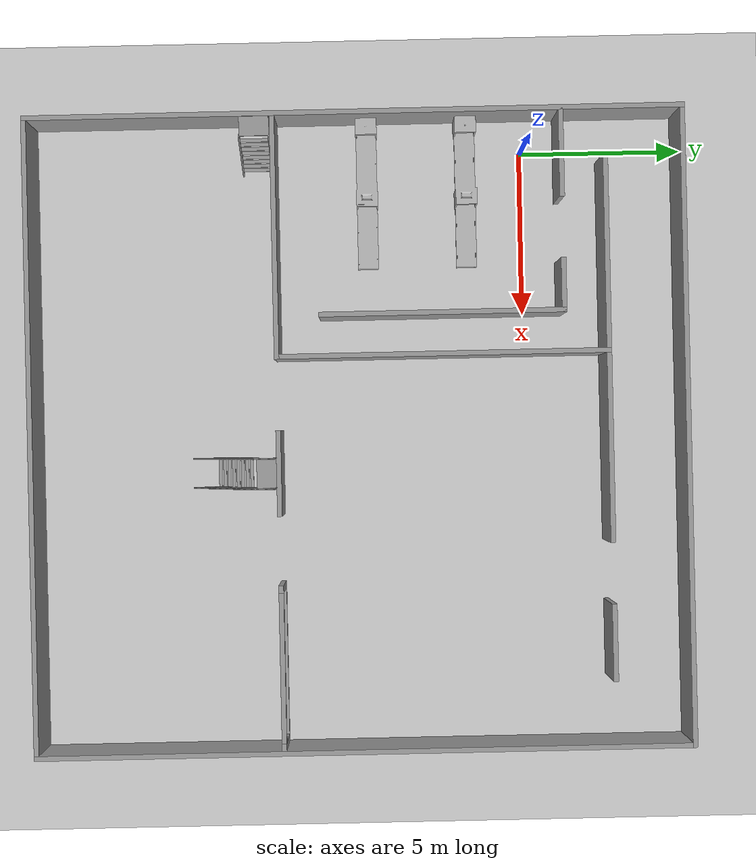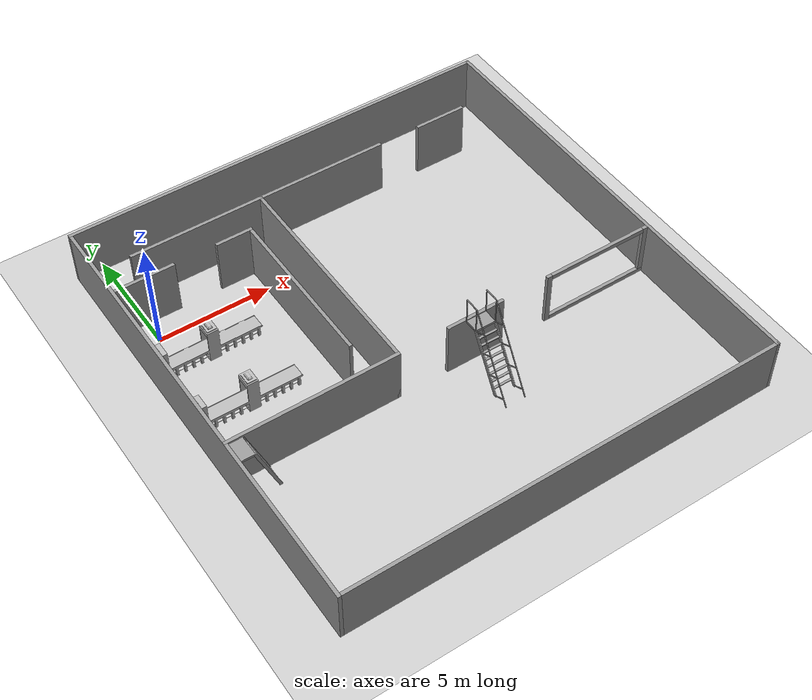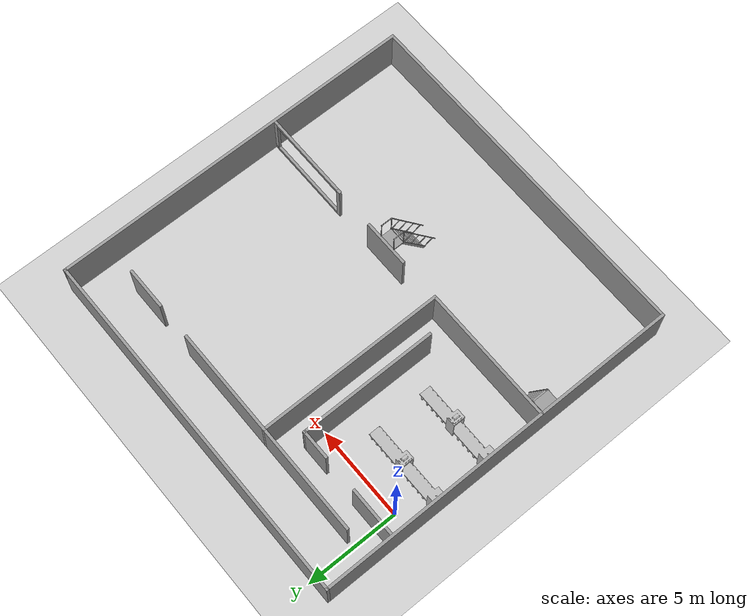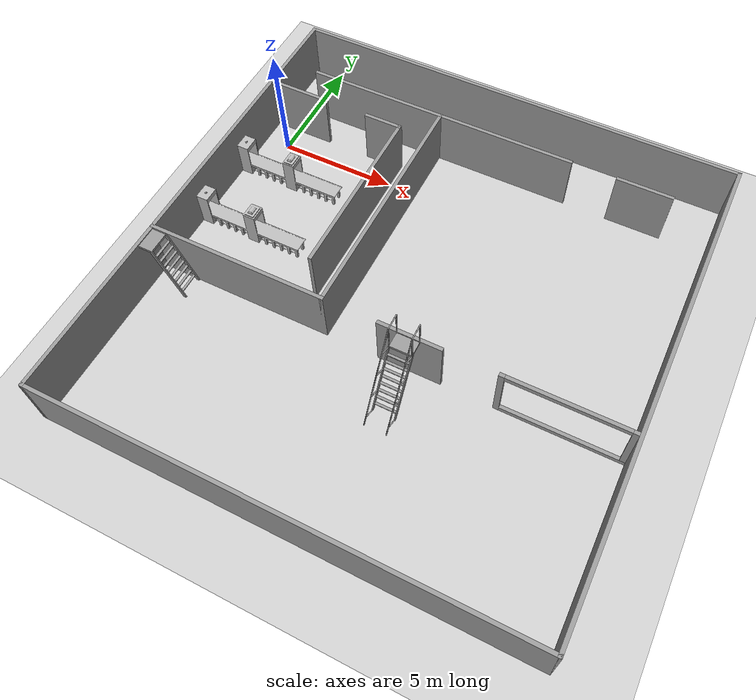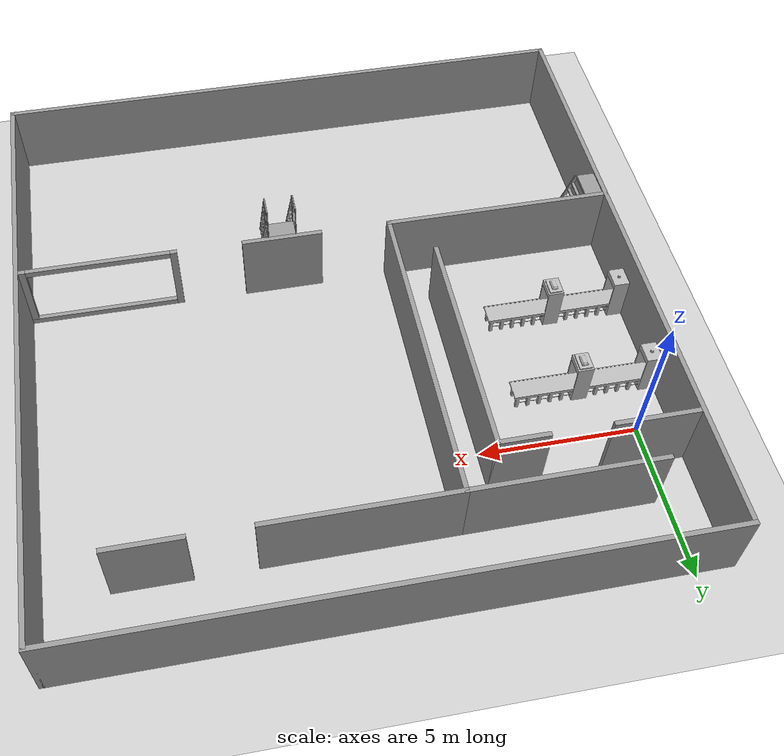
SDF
<sdf version="1.6">
 <world name="default">
  <model name="ground_plane">
   <static>1</static>
   <link name="link">
    <collision name="collision">
     <geometry><plane><normal>0 0 1</normal><size>100 100</size></plane></geometry>
     <surface><friction><ode><mu>100</mu><mu2>50</mu2></ode></friction></surface>
    </collision>
    <visual name="visual">
     <cast_shadows>0</cast_shadows>
     <geometry><plane><normal>0 0 1</normal><size>100 100</size></plane></geometry>
     <material>
      <script><uri>file://media/materials/scripts/gazebo.material</uri><name>Gazebo/Grey</name></script>
     </material>
    </visual>
   </link>
  </model>
  <model name="24fall_finalproject">
   <pose>8.55103 -5.1631 0 0 -0 0</pose>
   <link name="Wall_11">
    <collision name="Wall_11_Collision">
     <geometry><box><size>20.05 0.15 2.5</size></box></geometry>
     <pose>0 0 1.25 0 -0 0</pose>
    </collision>
    <visual name="Wall_11_Visual">
     <pose>0 0 1.25 0 -0 0</pose>
     <geometry><box><size>20.05 0.15 2.5</size></box></geometry>
     <material>
      <script><uri>file://media/materials/scripts/gazebo.material</uri><name>Gazebo/Grey</name></script>
      <ambient>1 1 1 1</ambient>
     </material>
     <meta><layer>0</layer></meta>
    </visual>
    <pose>-9.675 0 0 0 -0 -1.5708</pose>
   </link>
   <link name="Wall_22">
    <collision name="Wall_22_Collision">
     <geometry><box><size>2.727 0.15 2.5</size></box></geometry>
     <pose>0 0 1.25 0 -0 0</pose>
    </collision>
    <visual name="Wall_22_Visual">
     <pose>0 0 1.25 0 -0 0</pose>
     <geometry><box><size>2.727 0.15 2.5</size></box></geometry>
     <material>
      <script><uri>file://media/materials/scripts/gazebo.material</uri><name>Gazebo/Grey</name></script>
      <ambient>1 1 1 1</ambient>
     </material>
     <meta><layer>0</layer></meta>
    </visual>
    <pose>-8.3505 6.277 0 0 -0 0</pose>
   </link>
   <link name="Wall_24">
    <collision name="Wall_24_Collision">
     <geometry><box><size>1.65 0.15 2.5</size></box></geometry>
     <pose>0 0 1.25 0 -0 0</pose>
    </collision>
    <visual name="Wall_24_Visual">
     <pose>0 0 1.25 0 -0 0</pose>
     <geometry><box><size>1.65 0.15 2.5</size></box></geometry>
     <material>
      <script><uri>file://media/materials/scripts/gazebo.material</uri><name>Gazebo/Grey</name></script>
      <ambient>1 1 1 1</ambient>
     </material>
     <meta><layer>0</layer></meta>
    </visual>
    <pose>-4.312 6.277 0 0 -0 0</pose>
   </link>
   <link name="Wall_27">
    <collision name="Wall_27_Collision">
     <geometry><box><size>7.5 0.15 2.5</size></box></geometry>
     <pose>0 0 1.25 0 -0 0</pose>
    </collision>
    <visual name="Wall_27_Visual">
     <pose>0 0 1.25 0 -0 0</pose>
     <geometry><box><size>7.5 0.15 2.5</size></box></geometry>
     <material>
      <script><uri>file://media/materials/scripts/gazebo.material</uri><name>Gazebo/Grey</name></script>
      <ambient>1 1 1 1</ambient>
     </material>
     <meta><layer>0</layer></meta>
    </visual>
    <pose>-3.562 2.602 0 0 -0 -1.5708</pose>
   </link>
   <link name="Wall_29">
    <collision name="Wall_29_Collision">
     <geometry><box><size>7.5 0.15 2.5</size></box></geometry>
     <pose>0 0 1.25 0 -0 0</pose>
    </collision>
    <visual name="Wall_29_Visual">
     <pose>0 0 1.25 0 -0 0</pose>
     <geometry><box><size>7.5 0.15 2.5</size></box></geometry>
     <material>
      <script><uri>file://media/materials/scripts/gazebo.material</uri><name>Gazebo/Grey</name></script>
      <ambient>1 1 1 1</ambient>
     </material>
     <meta><layer>0</layer></meta>
    </visual>
    <pose>-5.989 -2.45 0 0 -0 0</pose>
   </link>
   <link name="Wall_31">
    <collision name="Wall_31_Collision">
     <geometry><box><size>10.2 0.15 2.5</size></box></geometry>
     <pose>0 0 1.25 0 -0 0</pose>
    </collision>
    <visual name="Wall_31_Visual">
     <pose>0 0 1.25 0 -0 0</pose>
     <geometry><box><size>10.2 0.15 2.5</size></box></geometry>
     <material>
      <script><uri>file://media/materials/scripts/gazebo.material</uri><name>Gazebo/Grey</name></script>
      <ambient>1 1 1 1</ambient>
     </material>
     <meta><layer>0</layer></meta>
    </visual>
    <pose>-2.314 2.575 0 0 -0 1.5708</pose>
   </link>
   <link name="Wall_33">
    <collision name="Wall_33_Collision">
     <geometry><box><size>6 0.15 2.5</size></box></geometry>
     <pose>0 0 1.25 0 -0 0</pose>
    </collision>
    <visual name="Wall_33_Visual">
     <pose>0 0 1.25 0 -0 0</pose>
     <geometry><box><size>6 0.15 2.5</size></box></geometry>
     <material>
      <script><uri>file://media/materials/scripts/gazebo.material</uri><name>Gazebo/Grey</name></script>
      <ambient>1 1 1 1</ambient>
     </material>
     <meta><layer>0</layer></meta>
    </visual>
    <pose>-5.239 7.6 0 0 -0 3.14159</pose>
   </link>
   <link name="Wall_36">
    <collision name="Wall_36_Collision">
     <geometry><box><size>19.5 0.15 2.5</size></box></geometry>
     <pose>0 0 1.25 0 -0 0</pose>
    </collision>
    <visual name="Wall_36_Visual">
     <pose>0 0 1.25 0 -0 0</pose>
     <geometry><box><size>19.5 0.15 2.5</size></box></geometry>
     <material>
      <script><uri>file://media/materials/scripts/gazebo.material</uri><name>Gazebo/Grey</name></script>
      <ambient>1 1 1 1</ambient>
     </material>
     <meta><layer>0</layer></meta>
    </visual>
    <pose>1e-06 9.95 0 0 -0 0</pose>
   </link>
   <link name="Wall_37">
    <collision name="Wall_37_Collision">
     <geometry><box><size>20.05 0.15 2.5</size></box></geometry>
     <pose>0 0 1.25 0 -0 0</pose>
    </collision>
    <visual name="Wall_37_Visual">
     <pose>0 0 1.25 0 -0 0</pose>
     <geometry><box><size>20.05 0.15 2.5</size></box></geometry>
     <material>
      <script><uri>file://media/materials/scripts/gazebo.material</uri><name>Gazebo/Grey</name></script>
      <ambient>1 1 1 1</ambient>
     </material>
     <meta><layer>0</layer></meta>
    </visual>
    <pose>9.675 0 0 0 -0 -1.5708</pose>
   </link>
   <link name="Wall_39">
    <collision name="Wall_39_Collision">
     <geometry><box><size>5.902 0.15 2.5</size></box></geometry>
     <pose>0 0 1.25 0 -0 0</pose>
    </collision>
    <visual name="Wall_39_Visual">
     <pose>0 0 1.25 0 -0 0</pose>
     <geometry><box><size>5.902 0.15 2.5</size></box></geometry>
     <material>
      <script><uri>file://media/materials/scripts/gazebo.material</uri><name>Gazebo/Grey</name></script>
      <ambient>1 1 1 1</ambient>
     </material>
     <meta><layer>0</layer></meta>
    </visual>
    <pose>0.562 7.6 0 0 -0 0</pose>
   </link>
   <link name="Wall_46">
    <collision name="Wall_46_Collision">
     <geometry><box><size>19.5 0.15 2.5</size></box></geometry>
     <pose>0 0 1.25 0 -0 0</pose>
    </collision>
    <visual name="Wall_46_Visual">
     <pose>0 0 1.25 0 -0 0</pose>
     <geometry><box><size>19.5 0.15 2.5</size></box></geometry>
     <material>
      <script><uri>file://media/materials/scripts/gazebo.material</uri><name>Gazebo/Grey</name></script>
      <ambient>1 1 1 1</ambient>
     </material>
     <meta><layer>0</layer></meta>
    </visual>
    <pose>1e-06 -9.95 0 0 -0 0</pose>
   </link>
   <link name="Wall_48">
    <collision name="Wall_48_Collision">
     <geometry><box><size>2.6 0.15 2.5</size></box></geometry>
     <pose>0 0 1.25 0 -0 0</pose>
    </collision>
    <visual name="Wall_48_Visual">
     <pose>0 0 1.25 0 -0 0</pose>
     <geometry><box><size>2.6 0.15 2.5</size></box></geometry>
     <material>
      <script><uri>file://media/materials/scripts/gazebo.material</uri><name>Gazebo/Grey</name></script>
      <ambient>1 1 1 1</ambient>
     </material>
     <meta><layer>0</layer></meta>
    </visual>
    <pose>1.213 -2.45 0 0 -0 0</pose>
   </link>
   <link name="Wall_50">
    <collision name="Wall_50_Collision">
     <geometry><box><size>2.35 0.15 2.5</size></box></geometry>
     <pose>0 0 1.25 0 -0 0</pose>
    </collision>
    <visual name="Wall_50_Visual">
     <pose>0 0 1.25 0 -0 0</pose>
     <geometry><box><size>2.35 0.15 2.5</size></box></geometry>
     <material>
      <script><uri>file://media/materials/scripts/gazebo.material</uri><name>Gazebo/Grey</name></script>
      <ambient>1 1 1 1</ambient>
     </material>
     <meta><layer>0</layer></meta>
    </visual>
    <pose>6.538 7.6 0 0 -0 0</pose>
   </link>
   <static>1</static>
  </model>
  <model name="window">
   <pose>15.6538 -7.62027 0 0 -0 0</pose>
   <link name="Wall_0">
    <visual name="Wall_0_Visual_0">
     <pose>-2.38596 0 1.25 0 -0 0</pose>
     <geometry><box><size>0.228084 0.15 2.5</size></box></geometry>
     <material>
      <script><uri>file://media/materials/scripts/gazebo.material</uri><name>Gazebo/Grey</name></script>
      <ambient>1 1 1 1</ambient>
     </material>
     <meta><layer>0</layer></meta>
    </visual>
    <collision name="Wall_0_Collision_0">
     <geometry><box><size>0.228084 0.15 2.5</size></box></geometry>
     <pose>-2.38596 0 1.25 0 -0 0</pose>
    </collision>
    <visual name="Wall_0_Visual_1">
     <pose>0.114042 0 0.1 0 -0 0</pose>
     <geometry><box><size>4.77192 0.15 0.2</size></box></geometry>
     <material>
      <script><uri>file://media/materials/scripts/gazebo.material</uri><name>Gazebo/Grey</name></script>
      <ambient>1 1 1 1</ambient>
     </material>
     <meta><layer>0</layer></meta>
    </visual>
    <collision name="Wall_0_Collision_1">
     <geometry><box><size>4.77192 0.15 0.2</size></box></geometry>
     <pose>0.114042 0 0.1 0 -0 0</pose>
    </collision>
    <visual name="Wall_0_Visual_2">
     <pose>2.38904 0 1.35 0 -0 0</pose>
     <geometry><box><size>0.221916 0.15 2.3</size></box></geometry>
     <material>
      <script><uri>file://media/materials/scripts/gazebo.material</uri><name>Gazebo/Grey</name></script>
      <ambient>1 1 1 1</ambient>
     </material>
     <meta><layer>0</layer></meta>
    </visual>
    <collision name="Wall_0_Collision_2">
     <geometry><box><size>0.221916 0.15 2.3</size></box></geometry>
     <pose>2.38904 0 1.35 0 -0 0</pose>
    </collision>
    <visual name="Wall_0_Visual_3">
     <pose>0.003084 0 2.4 0 -0 0</pose>
     <geometry><box><size>4.55 0.15 0.2</size></box></geometry>
     <material>
      <script><uri>file://media/materials/scripts/gazebo.material</uri><name>Gazebo/Grey</name></script>
      <ambient>1 1 1 1</ambient>
     </material>
     <meta><layer>0</layer></meta>
    </visual>
    <collision name="Wall_0_Collision_3">
     <geometry><box><size>4.55 0.15 0.2</size></box></geometry>
     <pose>0.003084 0 2.4 0 -0 0</pose>
    </collision>
   </link>
   <static>1</static>
  </model>
  <model name="assembly_line">
   <static>1</static>
   <link name="link">
    <collision name="collision">
     <geometry>
      <mesh><scale>0.001 0.001 0.001</scale><uri>model://assembly_line/meshes/assembly_line.STL</uri></mesh>
     </geometry>
    </collision>
    <visual name="visual">
     <geometry>
      <mesh><scale>0.001 0.001 0.001</scale><uri>model://assembly_line/meshes/assembly_line.STL</uri></mesh>
     </geometry>
    </visual>
   </link>
   <pose>-1.05222 -2.05663 -1e-06 1.5708 -0 1.5708</pose>
  </model>
  <model name="assembly_line_clone">
   <static>1</static>
   <link name="link">
    <collision name="collision">
     <geometry>
      <mesh><scale>0.001 0.001 0.001</scale><uri>model://assembly_line/meshes/assembly_line.STL</uri></mesh>
     </geometry>
    </collision>
    <visual name="visual">
     <geometry>
      <mesh><scale>0.001 0.001 0.001</scale><uri>model://assembly_line/meshes/assembly_line.STL</uri></mesh>
     </geometry>
    </visual>
   </link>
   <pose>-1.04946 -5.10141 -1e-06 1.5708 -0 1.5708</pose>
  </model>
  <model name="ladder_60deg_2rails">
   <static>1</static>
   <link name="step0">
    <pose>0 0.15396 0.266667 0 -0 0</pose>
    <inertial>
     <mass>9.75482</mass>
     <inertia>
      <ixx>0.00957124</ixx>
      <iyy>0.65963</iyy>
      <izz>0.666842</izz>
      <ixy>0</ixy>
      <ixz>0</ixz>
      <iyz>0</iyz>
     </inertia>
    </inertial>
    <collision name="collision"><geometry><box><size>0.9 0.1016 0.0381</size></box></geometry></collision>
    <visual name="visual">
     <geometry><box><size>0.9 0.1016 0.0381</size></box></geometry>
     <material>
      <script><uri>file://media/materials/scripts/gazebo.material</uri><name>Gazebo/Grey</name></script>
     </material>
    </visual>
   </link>
   <link name="step1">
    <pose>0 0.30792 0.533333 0 -0 0</pose>
    <inertial>
     <mass>9.75482</mass>
     <inertia>
      <ixx>0.00957124</ixx>
      <iyy>0.65963</iyy>
      <izz>0.666842</izz>
      <ixy>0</ixy>
      <ixz>0</ixz>
      <iyz>0</iyz>
     </inertia>
    </inertial>
    <collision name="collision"><geometry><box><size>0.9 0.1016 0.0381</size></box></geometry></collision>
    <visual name="visual">
     <geometry><box><size>0.9 0.1016 0.0381</size></box></geometry>
     <material>
      <script><uri>file://media/materials/scripts/gazebo.material</uri><name>Gazebo/Grey</name></script>
     </material>
    </visual>
   </link>
   <link name="step2">
    <pose>0 0.46188 0.8 0 -0 0</pose>
    <inertial>
     <mass>9.75482</mass>
     <inertia>
      <ixx>0.00957124</ixx>
      <iyy>0.65963</iyy>
      <izz>0.666842</izz>
      <ixy>0</ixy>
      <ixz>0</ixz>
      <iyz>0</iyz>
     </inertia>
    </inertial>
    <collision name="collision"><geometry><box><size>0.9 0.1016 0.0381</size></box></geometry></collision>
    <visual name="visual">
     <geometry><box><size>0.9 0.1016 0.0381</size></box></geometry>
     <material>
      <script><uri>file://media/materials/scripts/gazebo.material</uri><name>Gazebo/Grey</name></script>
     </material>
    </visual>
   </link>
   <link name="step3">
    <pose>0 0.61584 1.06667 0 -0 0</pose>
    <inertial>
     <mass>9.75482</mass>
     <inertia>
      <ixx>0.00957124</ixx>
      <iyy>0.65963</iyy>
      <izz>0.666842</izz>
      <ixy>0</ixy>
      <ixz>0</ixz>
      <iyz>0</iyz>
     </inertia>
    </inertial>
    <collision name="collision"><geometry><box><size>0.9 0.1016 0.0381</size></box></geometry></collision>
    <visual name="visual">
     <geometry><box><size>0.9 0.1016 0.0381</size></box></geometry>
     <material>
      <script><uri>file://media/materials/scripts/gazebo.material</uri><name>Gazebo/Grey</name></script>
     </material>
    </visual>
   </link>
   <link name="step4">
    <pose>0 0.7698 1.33333 0 -0 0</pose>
    <inertial>
     <mass>9.75482</mass>
     <inertia>
      <ixx>0.00957124</ixx>
      <iyy>0.65963</iyy>
      <izz>0.666842</izz>
      <ixy>0</ixy>
      <ixz>0</ixz>
      <iyz>0</iyz>
     </inertia>
    </inertial>
    <collision name="collision"><geometry><box><size>0.9 0.1016 0.0381</size></box></geometry></collision>
    <visual name="visual">
     <geometry><box><size>0.9 0.1016 0.0381</size></box></geometry>
     <material>
      <script><uri>file://media/materials/scripts/gazebo.material</uri><name>Gazebo/Grey</name></script>
     </material>
    </visual>
   </link>
   <link name="step5">
    <pose>0 0.92376 1.6 0 -0 0</pose>
    <inertial>
     <mass>9.75482</mass>
     <inertia>
      <ixx>0.00957124</ixx>
      <iyy>0.65963</iyy>
      <izz>0.666842</izz>
      <ixy>0</ixy>
      <ixz>0</ixz>
      <iyz>0</iyz>
     </inertia>
    </inertial>
    <collision name="collision"><geometry><box><size>0.9 0.1016 0.0381</size></box></geometry></collision>
    <visual name="visual">
     <geometry><box><size>0.9 0.1016 0.0381</size></box></geometry>
     <material>
      <script><uri>file://media/materials/scripts/gazebo.material</uri><name>Gazebo/Grey</name></script>
     </material>
    </visual>
   </link>
   <link name="step6">
    <pose>0 1.07772 1.86667 0 -0 0</pose>
    <inertial>
     <mass>9.75482</mass>
     <inertia>
      <ixx>0.00957124</ixx>
      <iyy>0.65963</iyy>
      <izz>0.666842</izz>
      <ixy>0</ixy>
      <ixz>0</ixz>
      <iyz>0</iyz>
     </inertia>
    </inertial>
    <collision name="collision"><geometry><box><size>0.9 0.1016 0.0381</size></box></geometry></collision>
    <visual name="visual">
     <geometry><box><size>0.9 0.1016 0.0381</size></box></geometry>
     <material>
      <script><uri>file://media/materials/scripts/gazebo.material</uri><name>Gazebo/Grey</name></script>
     </material>
    </visual>
   </link>
   <link name="step7">
    <pose>0 1.23168 2.13333 0 -0 0</pose>
    <inertial>
     <mass>9.75482</mass>
     <inertia>
      <ixx>0.00957124</ixx>
      <iyy>0.65963</iyy>
      <izz>0.666842</izz>
      <ixy>0</ixy>
      <ixz>0</ixz>
      <iyz>0</iyz>
     </inertia>
    </inertial>
    <collision name="collision"><geometry><box><size>0.9 0.1016 0.0381</size></box></geometry></collision>
    <visual name="visual">
     <geometry><box><size>0.9 0.1016 0.0381</size></box></geometry>
     <material>
      <script><uri>file://media/materials/scripts/gazebo.material</uri><name>Gazebo/Grey</name></script>
     </material>
    </visual>
   </link>
   <link name="landing">
    <pose>0 1.68564 2.4 0 -0 0</pose>
    <inertial>
     <mass>57.6072</mass>
     <inertia><ixx>1.73518</ixx><iyy>3.89545</iyy><izz>5.6167</izz><ixy>0</ixy><ixz>0</ixz><iyz>0</iyz></inertia>
    </inertial>
    <collision name="collision"><geometry><box><size>0.9 0.6 0.1016</size></box></geometry></collision>
    <visual name="visual">
     <geometry><box><size>0.9 0.6 0.1016</size></box></geometry>
     <material>
      <script><uri>file://media/materials/scripts/gazebo.material</uri><name>Gazebo/Grey</name></script>
     </material>
    </visual>
   </link>
   <link name="left_side_wall">
    <pose>-0.45 0.69282 1.2 1.0472 -0 0</pose>
    <collision name="collision"><geometry><box><size>0.0508 2.85128 0.13</size></box></geometry></collision>
    <visual name="visual">
     <geometry><box><size>0.0508 2.85128 0.13</size></box></geometry>
     <material>
      <script><uri>file://media/materials/scripts/gazebo.material</uri><name>Gazebo/Grey</name></script>
     </material>
    </visual>
   </link>
   <link name="right_side_wall">
    <pose>0.45 0.69282 1.2 1.0472 -0 0</pose>
    <collision name="collision"><geometry><box><size>0.0508 2.85128 0.13</size></box></geometry></collision>
    <visual name="visual">
     <geometry><box><size>0.0508 2.85128 0.13</size></box></geometry>
     <material>
      <script><uri>file://media/materials/scripts/gazebo.material</uri><name>Gazebo/Grey</name></script>
     </material>
    </visual>
   </link>
   <link name="left_railing_long">
    <pose>-0.45 0.34282 1.80622 -0.523599 0 0</pose>
    <collision name="collision">
     <geometry><cylinder><radius>0.02413</radius><length>4.17128</length></cylinder></geometry>
    </collision>
    <visual name="visual">
     <geometry><cylinder><radius>0.02413</radius><length>4.17128</length></cylinder></geometry>
     <material>
      <script><uri>file://media/materials/scripts/gazebo.material</uri><name>Gazebo/Grey</name></script>
     </material>
    </visual>
   </link>
   <link name="left_railing_upright0">
    <pose>-0.45 -0.274963 0.15875 1.0472 -0 0</pose>
    <collision name="collision">
     <geometry><cylinder><radius>0.02413</radius><length>0.541218</length></cylinder></geometry>
    </collision>
    <visual name="visual">
     <geometry><cylinder><radius>0.02413</radius><length>0.541218</length></cylinder></geometry>
     <material>
      <script><uri>file://media/materials/scripts/gazebo.material</uri><name>Gazebo/Grey</name></script>
     </material>
    </visual>
   </link>
   <link name="left_railing_upright1">
    <pose>-0.45 0.186917 0.95875 1.0472 -0 0</pose>
    <collision name="collision">
     <geometry><cylinder><radius>0.02413</radius><length>0.541218</length></cylinder></geometry>
    </collision>
    <visual name="visual">
     <geometry><cylinder><radius>0.02413</radius><length>0.541218</length></cylinder></geometry>
     <material>
      <script><uri>file://media/materials/scripts/gazebo.material</uri><name>Gazebo/Grey</name></script>
     </material>
    </visual>
   </link>
   <link name="left_railing_upright2">
    <pose>-0.45 0.648797 1.75875 1.0472 -0 0</pose>
    <collision name="collision">
     <geometry><cylinder><radius>0.02413</radius><length>0.541218</length></cylinder></geometry>
    </collision>
    <visual name="visual">
     <geometry><cylinder><radius>0.02413</radius><length>0.541218</length></cylinder></geometry>
     <material>
      <script><uri>file://media/materials/scripts/gazebo.material</uri><name>Gazebo/Grey</name></script>
     </material>
    </visual>
   </link>
   <link name="left_railing_upright3">
    <pose>-0.45 1.11068 2.55875 1.0472 -0 0</pose>
    <collision name="collision">
     <geometry><cylinder><radius>0.02413</radius><length>0.541218</length></cylinder></geometry>
    </collision>
    <visual name="visual">
     <geometry><cylinder><radius>0.02413</radius><length>0.541218</length></cylinder></geometry>
     <material>
      <script><uri>file://media/materials/scripts/gazebo.material</uri><name>Gazebo/Grey</name></script>
     </material>
    </visual>
   </link>
   <link name="left_railing_landing_top">
    <pose>-0.45 1.68564 3.61244 1.5708 -0 0</pose>
    <collision name="collision">
     <geometry><cylinder><radius>0.02413</radius><length>0.64826</length></cylinder></geometry>
    </collision>
    <visual name="visual">
     <geometry><cylinder><radius>0.02413</radius><length>0.64826</length></cylinder></geometry>
     <material>
      <script><uri>file://media/materials/scripts/gazebo.material</uri><name>Gazebo/Grey</name></script>
     </material>
    </visual>
   </link>
   <link name="left_railing_landing_upright_0">
    <pose>-0.45 1.38564 3.00622 0 -0 0</pose>
    <collision name="collision">
     <geometry><cylinder><radius>0.02413</radius><length>1.21244</length></cylinder></geometry>
    </collision>
    <visual name="visual">
     <geometry><cylinder><radius>0.02413</radius><length>1.21244</length></cylinder></geometry>
     <material>
      <script><uri>file://media/materials/scripts/gazebo.material</uri><name>Gazebo/Grey</name></script>
     </material>
    </visual>
   </link>
   <link name="left_railing_landing_upright_1">
    <pose>-0.45 1.98564 3.00622 0 -0 0</pose>
    <collision name="collision">
     <geometry><cylinder><radius>0.02413</radius><length>1.21244</length></cylinder></geometry>
    </collision>
    <visual name="visual">
     <geometry><cylinder><radius>0.02413</radius><length>1.21244</length></cylinder></geometry>
     <material>
      <script><uri>file://media/materials/scripts/gazebo.material</uri><name>Gazebo/Grey</name></script>
     </material>
    </visual>
   </link>
   <link name="right_railing_long">
    <pose>0.45 0.34282 1.80622 -0.523599 0 0</pose>
    <collision name="collision">
     <geometry><cylinder><radius>0.02413</radius><length>4.17128</length></cylinder></geometry>
    </collision>
    <visual name="visual">
     <geometry><cylinder><radius>0.02413</radius><length>4.17128</length></cylinder></geometry>
     <material>
      <script><uri>file://media/materials/scripts/gazebo.material</uri><name>Gazebo/Grey</name></script>
     </material>
    </visual>
   </link>
   <link name="right_railing_upright0">
    <pose>0.45 -0.274963 0.15875 1.0472 -0 0</pose>
    <collision name="collision">
     <geometry><cylinder><radius>0.02413</radius><length>0.541218</length></cylinder></geometry>
    </collision>
    <visual name="visual">
     <geometry><cylinder><radius>0.02413</radius><length>0.541218</length></cylinder></geometry>
     <material>
      <script><uri>file://media/materials/scripts/gazebo.material</uri><name>Gazebo/Grey</name></script>
     </material>
    </visual>
   </link>
   <link name="right_railing_upright1">
    <pose>0.45 0.186917 0.95875 1.0472 -0 0</pose>
    <collision name="collision">
     <geometry><cylinder><radius>0.02413</radius><length>0.541218</length></cylinder></geometry>
    </collision>
    <visual name="visual">
     <geometry><cylinder><radius>0.02413</radius><length>0.541218</length></cylinder></geometry>
     <material>
      <script><uri>file://media/materials/scripts/gazebo.material</uri><name>Gazebo/Grey</name></script>
     </material>
    </visual>
   </link>
   <link name="right_railing_upright2">
    <pose>0.45 0.648797 1.75875 1.0472 -0 0</pose>
    <collision name="collision">
     <geometry><cylinder><radius>0.02413</radius><length>0.541218</length></cylinder></geometry>
    </collision>
    <visual name="visual">
     <geometry><cylinder><radius>0.02413</radius><length>0.541218</length></cylinder></geometry>
     <material>
      <script><uri>file://media/materials/scripts/gazebo.material</uri><name>Gazebo/Grey</name></script>
     </material>
    </visual>
   </link>
   <link name="right_railing_upright3">
    <pose>0.45 1.11068 2.55875 1.0472 -0 0</pose>
    <collision name="collision">
     <geometry><cylinder><radius>0.02413</radius><length>0.541218</length></cylinder></geometry>
    </collision>
    <visual name="visual">
     <geometry><cylinder><radius>0.02413</radius><length>0.541218</length></cylinder></geometry>
     <material>
      <script><uri>file://media/materials/scripts/gazebo.material</uri><name>Gazebo/Grey</name></script>
     </material>
    </visual>
   </link>
   <link name="right_railing_landing_top">
    <pose>0.45 1.68564 3.61244 1.5708 -0 0</pose>
    <collision name="collision">
     <geometry><cylinder><radius>0.02413</radius><length>0.64826</length></cylinder></geometry>
    </collision>
    <visual name="visual">
     <geometry><cylinder><radius>0.02413</radius><length>0.64826</length></cylinder></geometry>
     <material>
      <script><uri>file://media/materials/scripts/gazebo.material</uri><name>Gazebo/Grey</name></script>
     </material>
    </visual>
   </link>
   <link name="right_railing_landing_upright_0">
    <pose>0.45 1.38564 3.00622 0 -0 0</pose>
    <collision name="collision">
     <geometry><cylinder><radius>0.02413</radius><length>1.21244</length></cylinder></geometry>
    </collision>
    <visual name="visual">
     <geometry><cylinder><radius>0.02413</radius><length>1.21244</length></cylinder></geometry>
     <material>
      <script><uri>file://media/materials/scripts/gazebo.material</uri><name>Gazebo/Grey</name></script>
     </material>
    </visual>
   </link>
   <link name="right_railing_landing_upright_1">
    <pose>0.45 1.98564 3.00622 0 -0 0</pose>
    <collision name="collision">
     <geometry><cylinder><radius>0.02413</radius><length>1.21244</length></cylinder></geometry>
    </collision>
    <visual name="visual">
     <geometry><cylinder><radius>0.02413</radius><length>1.21244</length></cylinder></geometry>
     <material>
      <script><uri>file://media/materials/scripts/gazebo.material</uri><name>Gazebo/Grey</name></script>
     </material>
    </visual>
   </link>
   <pose>9.74731 -9.67253 0 0 -0 0</pose>
  </model>
  <model name="ladder_70deg_0rails">
   <static>1</static>
   <link name="step0">
    <pose>0 0.097059 0.266667 0 -0 0</pose>
    <inertial>
     <mass>9.75482</mass>
     <inertia>
      <ixx>0.00957124</ixx>
      <iyy>0.65963</iyy>
      <izz>0.666842</izz>
      <ixy>0</ixy>
      <ixz>0</ixz>
      <iyz>0</iyz>
     </inertia>
    </inertial>
    <collision name="collision"><geometry><box><size>0.9 0.1016 0.0381</size></box></geometry></collision>
    <visual name="visual">
     <geometry><box><size>0.9 0.1016 0.0381</size></box></geometry>
     <material>
      <script><uri>file://media/materials/scripts/gazebo.material</uri><name>Gazebo/Grey</name></script>
     </material>
    </visual>
   </link>
   <link name="step1">
    <pose>0 0.194117 0.533333 0 -0 0</pose>
    <inertial>
     <mass>9.75482</mass>
     <inertia>
      <ixx>0.00957124</ixx>
      <iyy>0.65963</iyy>
      <izz>0.666842</izz>
      <ixy>0</ixy>
      <ixz>0</ixz>
      <iyz>0</iyz>
     </inertia>
    </inertial>
    <collision name="collision"><geometry><box><size>0.9 0.1016 0.0381</size></box></geometry></collision>
    <visual name="visual">
     <geometry><box><size>0.9 0.1016 0.0381</size></box></geometry>
     <material>
      <script><uri>file://media/materials/scripts/gazebo.material</uri><name>Gazebo/Grey</name></script>
     </material>
    </visual>
   </link>
   <link name="step2">
    <pose>0 0.291176 0.8 0 -0 0</pose>
    <inertial>
     <mass>9.75482</mass>
     <inertia>
      <ixx>0.00957124</ixx>
      <iyy>0.65963</iyy>
      <izz>0.666842</izz>
      <ixy>0</ixy>
      <ixz>0</ixz>
      <iyz>0</iyz>
     </inertia>
    </inertial>
    <collision name="collision"><geometry><box><size>0.9 0.1016 0.0381</size></box></geometry></collision>
    <visual name="visual">
     <geometry><box><size>0.9 0.1016 0.0381</size></box></geometry>
     <material>
      <script><uri>file://media/materials/scripts/gazebo.material</uri><name>Gazebo/Grey</name></script>
     </material>
    </visual>
   </link>
   <link name="step3">
    <pose>0 0.388235 1.06667 0 -0 0</pose>
    <inertial>
     <mass>9.75482</mass>
     <inertia>
      <ixx>0.00957124</ixx>
      <iyy>0.65963</iyy>
      <izz>0.666842</izz>
      <ixy>0</ixy>
      <ixz>0</ixz>
      <iyz>0</iyz>
     </inertia>
    </inertial>
    <collision name="collision"><geometry><box><size>0.9 0.1016 0.0381</size></box></geometry></collision>
    <visual name="visual">
     <geometry><box><size>0.9 0.1016 0.0381</size></box></geometry>
     <material>
      <script><uri>file://media/materials/scripts/gazebo.material</uri><name>Gazebo/Grey</name></script>
     </material>
    </visual>
   </link>
   <link name="step4">
    <pose>0 0.485294 1.33333 0 -0 0</pose>
    <inertial>
     <mass>9.75482</mass>
     <inertia>
      <ixx>0.00957124</ixx>
      <iyy>0.65963</iyy>
      <izz>0.666842</izz>
      <ixy>0</ixy>
      <ixz>0</ixz>
      <iyz>0</iyz>
     </inertia>
    </inertial>
    <collision name="collision"><geometry><box><size>0.9 0.1016 0.0381</size></box></geometry></collision>
    <visual name="visual">
     <geometry><box><size>0.9 0.1016 0.0381</size></box></geometry>
     <material>
      <script><uri>file://media/materials/scripts/gazebo.material</uri><name>Gazebo/Grey</name></script>
     </material>
    </visual>
   </link>
   <link name="step5">
    <pose>0 0.582352 1.6 0 -0 0</pose>
    <inertial>
     <mass>9.75482</mass>
     <inertia>
      <ixx>0.00957124</ixx>
      <iyy>0.65963</iyy>
      <izz>0.666842</izz>
      <ixy>0</ixy>
      <ixz>0</ixz>
      <iyz>0</iyz>
     </inertia>
    </inertial>
    <collision name="collision"><geometry><box><size>0.9 0.1016 0.0381</size></box></geometry></collision>
    <visual name="visual">
     <geometry><box><size>0.9 0.1016 0.0381</size></box></geometry>
     <material>
      <script><uri>file://media/materials/scripts/gazebo.material</uri><name>Gazebo/Grey</name></script>
     </material>
    </visual>
   </link>
   <link name="step6">
    <pose>0 0.679411 1.86667 0 -0 0</pose>
    <inertial>
     <mass>9.75482</mass>
     <inertia>
      <ixx>0.00957124</ixx>
      <iyy>0.65963</iyy>
      <izz>0.666842</izz>
      <ixy>0</ixy>
      <ixz>0</ixz>
      <iyz>0</iyz>
     </inertia>
    </inertial>
    <collision name="collision"><geometry><box><size>0.9 0.1016 0.0381</size></box></geometry></collision>
    <visual name="visual">
     <geometry><box><size>0.9 0.1016 0.0381</size></box></geometry>
     <material>
      <script><uri>file://media/materials/scripts/gazebo.material</uri><name>Gazebo/Grey</name></script>
     </material>
    </visual>
   </link>
   <link name="step7">
    <pose>0 0.77647 2.13333 0 -0 0</pose>
    <inertial>
     <mass>9.75482</mass>
     <inertia>
      <ixx>0.00957124</ixx>
      <iyy>0.65963</iyy>
      <izz>0.666842</izz>
      <ixy>0</ixy>
      <ixz>0</ixz>
      <iyz>0</iyz>
     </inertia>
    </inertial>
    <collision name="collision"><geometry><box><size>0.9 0.1016 0.0381</size></box></geometry></collision>
    <visual name="visual">
     <geometry><box><size>0.9 0.1016 0.0381</size></box></geometry>
     <material>
      <script><uri>file://media/materials/scripts/gazebo.material</uri><name>Gazebo/Grey</name></script>
     </material>
    </visual>
   </link>
   <link name="landing">
    <pose>0 1.17353 2.4 0 -0 0</pose>
    <inertial>
     <mass>57.6072</mass>
     <inertia><ixx>1.73518</ixx><iyy>3.89545</iyy><izz>5.6167</izz><ixy>0</ixy><ixz>0</ixz><iyz>0</iyz></inertia>
    </inertial>
    <collision name="collision"><geometry><box><size>0.9 0.6 0.1016</size></box></geometry></collision>
    <visual name="visual">
     <geometry><box><size>0.9 0.6 0.1016</size></box></geometry>
     <material>
      <script><uri>file://media/materials/scripts/gazebo.material</uri><name>Gazebo/Grey</name></script>
     </material>
    </visual>
   </link>
   <link name="left_side_wall">
    <pose>-0.45 0.436764 1.2 1.22173 -0 0</pose>
    <collision name="collision"><geometry><box><size>0.0508 2.63403 0.13</size></box></geometry></collision>
    <visual name="visual">
     <geometry><box><size>0.0508 2.63403 0.13</size></box></geometry>
     <material>
      <script><uri>file://media/materials/scripts/gazebo.material</uri><name>Gazebo/Grey</name></script>
     </material>
    </visual>
   </link>
   <link name="right_side_wall">
    <pose>0.45 0.436764 1.2 1.22173 -0 0</pose>
    <collision name="collision"><geometry><box><size>0.0508 2.63403 0.13</size></box></geometry></collision>
    <visual name="visual">
     <geometry><box><size>0.0508 2.63403 0.13</size></box></geometry>
     <material>
      <script><uri>file://media/materials/scripts/gazebo.material</uri><name>Gazebo/Grey</name></script>
     </material>
    </visual>
   </link>
   <pose>0.417198 -8.16364 -0 0 -0 1.5708</pose>
  </model>
 </world>
</sdf>
